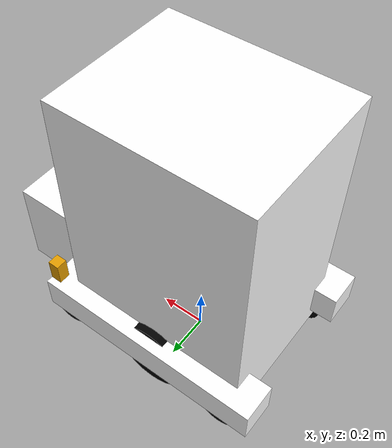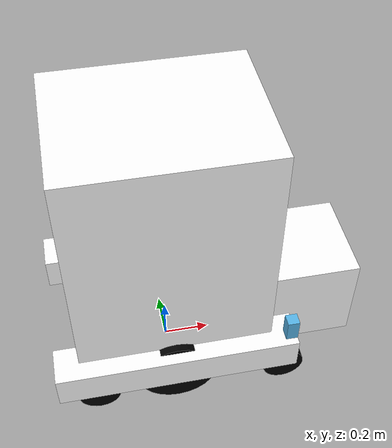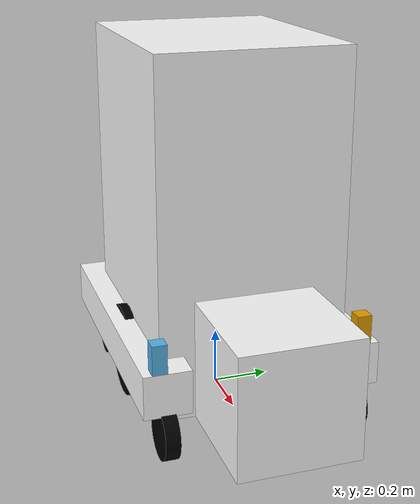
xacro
<?xml version="1.0"?>

<robot xmlns:xacro="http://www.ros.org/wiki/xacro" name="wheelchair">
  <xacro:property name="PI" value="3.14159265359" />

  <xacro:property name="chair_width" value="0.643" /> <!-- From front wheel right joint to front wheel left joint -->
  <xacro:property name="chair_length" value="0.812" /> <!-- From front wheel joint to back wheel joint -->
  <xacro:property name="chair_height" value="1.191" /> <!-- From front wheel joint to head rest -->
  <xacro:property name="chair_weight" value="10.0" />

  <xacro:property name="legs_width" value="0.4064" />
  <xacro:property name="legs_length" value="0.4064" />
  <xacro:property name="legs_height" value="0.4064" />
  <xacro:property name="legs_weight" value="2.0" />

  <xacro:property name="main_wheel_length" value="0.065" />
  <xacro:property name="main_wheel_radius" value=".165" />
  <xacro:property name="main_wheel_weight" value="2.0" />

  <xacro:property name="small_wheel_radius" value=".089" />
  <xacro:property name="small_wheel_length" value=".05" />
  <xacro:property name="small_wheel_weight" value="1.0" />

  <xacro:macro name="box_intertia" params="height length width weight" >
    <inertia ixx="${1/12 * weight * (height + length)}" ixy="0" ixz="0" iyy="${1/12 * weight * (width + length)}" iyz="0" izz="${1/12 * weight * (width + height)}" />
  </xacro:macro>

  <xacro:macro name="cylinder_intertia" params="length radius weight" >
    <inertia ixx="${1/12 * weight * (3 * radius * radius + length * length)}" ixy="0" ixz="0" iyy="${1/12 * weight * (3 * radius*radius + length*length)}" iyz="0" izz="${1/2 * weight * radius*radius}" />
  </xacro:macro>

  <link name="base_footprint">
    <visual>
      <origin xyz="0 0 0" rpy="0 0 0" />
        <geometry>
          <box size="0.001 0.001 0.001" />
      </geometry>
    </visual>
  </link>

  <joint name="base_footprint_joint" type="fixed">
    <origin xyz=" 0 0 0.7" rpy="0 0 0"/>
    <parent link="base_footprint"/>
    <child link="base_link"/>
  </joint>

  <link name="base_link">
    <visual>
      <geometry>
        <box size="${chair_length} ${chair_width} ${chair_height}"/>
      </geometry>
      <material name="white">
        <color rgba="1 1 1 1"/>
      </material>
    </visual>
    <collision>
      <geometry>
        <box size="${chair_length} ${chair_width} ${chair_height}"/>
      </geometry>
    </collision>
    <inertial>
      <mass value="${chair_weight}"/>
      <xacro:box_intertia height="${chair_height}" length="${chair_length}" width="${chair_width}" weight="${chair_weight}" />
    </inertial>
  </link>

  <link name="imu_link">
    <inertial>
      <mass value="0.01"/>
      <origin xyz="0 0 0"/>
      <inertia ixx="1.0E-6" ixy="0" ixz="0" iyy="1.0E-6" iyz="0" izz="1.0E-6"/>
    </inertial>
    <visual>
      <origin rpy="0 0 0" xyz="0 0 0"/>
      <geometry>
        <box size="0.01 0.01 0.01"/>
      </geometry>
    </visual>
  </link>

  <joint name="imu_joint" type="fixed">
    <parent link="base_link"/>
    <child link="imu_link"/>
    <origin xyz="0 0 0" rpy="${PI} 0 0"/>
  </joint>

<!--Legs -->
  <link name="legs">
    <visual>
      <geometry>
        <box size="${legs_length} ${legs_width} ${legs_height}"/>
      </geometry>
      <material name="white">
        <color rgba="1 1 1 1"/>
      </material>
    </visual>
    <collision>
      <geometry>
        <box size="${legs_length} ${legs_width} ${legs_height}"/>
      </geometry>
    </collision>
    <inertial>
      <mass value="${legs_weight}"/>
      <xacro:box_intertia height="${legs_height}" length="${legs_length}" width="${legs_width}" weight="${legs_weight}" />
    </inertial>
  </link>

    <joint name="legs_joint" type="fixed">
    <axis xyz="0 0 0"/>
    <parent link="base_link"/>
    <child link="legs"/>
    <origin rpy="0 0 0" xyz="${chair_length/2 + 0.4064/2} 0 -${chair_height/2 - 0.4064/2}"/> <!--chair_height/4 + chair_height/8 because this is relative to the center of the bar -->
  </joint>

<!--Right Bar -->
  <link name="right_bar">
    <visual>
      <geometry>
        <box size="${chair_length + chair_length/4} ${chair_width/4} ${chair_height/8}"/>
      </geometry>
      <material name="white">
        <color rgba="1 1 1 1"/>
      </material>
    </visual>
    <collision>
      <geometry>
        <box size="${chair_length + chair_length/4} ${chair_width/4} ${chair_height/8}"/>
      </geometry>
    </collision>
    <inertial>
      <mass value="2.0"/>
      <inertia ixx="1e-3" ixy="1e-3" ixz="1e-3" iyy="1e-3" iyz="1e-3" izz="1e-3"/>
    </inertial>
  </link>

  <joint name="right_bar_joint" type="fixed">
    <axis xyz="0 0 0"/>
    <parent link="base_link"/>
    <child link="right_bar"/>
    <origin rpy="0 0 0" xyz="0.0 ${chair_width/2} -${chair_height/4 + chair_height/8}"/> <!--chair_height/4 + chair_height/8 because this is relative to the center of the bar -->
  </joint>

<!--Left Bar -->

  <link name="left_bar">
    <visual>
      <geometry>
        <box size="${chair_length + chair_length/4} ${chair_width/4} ${chair_height/8}"/>
      </geometry>
      <material name="white">
        <color rgba="1 1 1 1"/>
      </material>
    </visual>
    <collision>
      <geometry>
        <box size="${chair_length + chair_length/4} ${chair_width/4} ${chair_height/8}"/>
      </geometry>
    </collision>
    <inertial>
      <mass value="2.0"/>
      <inertia ixx="1e-3" ixy="1e-3" ixz="1e-3" iyy="1e-3" iyz="1e-3" izz="1e-3"/>
    </inertial>
  </link>

  <joint name="left_bar_joint" type="fixed">
    <axis xyz="0 0 0"/>
    <parent link="base_link"/>
    <child link="left_bar"/>
    <origin rpy="0 0 0" xyz="0.0 -${chair_width/2} -${chair_height/4 + chair_height/8}"/> <!--chair_height/4 + chair_height/8 because this is relative to the center of the bar -->
  </joint>

<!--Main Wheels -->

  <joint name="right_main_wheel_joint" type="continuous">
    <axis xyz="0 0 -1"/>
    <parent link="right_bar"/>
    <child link="right_main_wheel"/>
    <origin rpy="1.57075 0 0" xyz="0.0 0.0 -${chair_height/8-0.076}"/>
  </joint>

  <link name="right_main_wheel">
    <visual>
      <geometry>
        <cylinder length="${main_wheel_length}" radius="${main_wheel_radius}"/>
      </geometry>
      <material name="white">
        <color rgba="0 0 0 1"/>
      </material>
    </visual>
    <collision>
      <geometry>
        <cylinder length="${main_wheel_length}" radius="${main_wheel_radius}"/>
      </geometry>
    </collision>
    <inertial>
      <mass value="${main_wheel_weight}"/>
      <xacro:cylinder_intertia length="${main_wheel_length}" radius="${main_wheel_radius}" weight="${main_wheel_weight}" />
    </inertial>
  </link>

  <joint name="left_main_wheel_joint" type="continuous">
    <axis xyz="0 0 -1"/>
    <parent link="left_bar"/>
    <child link="left_main_wheel"/>
    <origin rpy="1.57075 0 0" xyz="0.0 0.0 -${chair_height/8-0.076}"/>
  </joint>

  <link name="left_main_wheel">
    <visual>
      <geometry>
        <cylinder length="${main_wheel_length}" radius="${main_wheel_radius}"/>
      </geometry>
      <material name="white">
        <color rgba="0 0 0 1"/>
      </material>
    </visual>
    <collision>
      <geometry>
        <cylinder length="${main_wheel_length}" radius="${main_wheel_radius}"/>
      </geometry>
    </collision>
    <inertial>
      <mass value="${main_wheel_weight}"/>
      <xacro:cylinder_intertia length="${main_wheel_length}" radius="${main_wheel_radius}" weight="${main_wheel_weight}" />
    </inertial>
  </link>

<!--Laser Scanners -->

  <link name="right_scanner">
    <visual>
      <origin xyz="0.0 0 0" rpy="0 0 0"/>
      <geometry>
        <box size="0.05 0.05 0.1"/>
      </geometry>
    </visual>
    <collision>
      <geometry>
        <box size="0.05 0.05 0.1"/>
      </geometry>
    </collision>
    <inertial>
      <mass value="1e-5" />
      <inertia ixx="1e-3" ixy="0" ixz="0" iyy="1e-3" iyz="0" izz="1e-3" />
    </inertial>
  </link>

  <joint name="right_scanner_joint" type="fixed">
    <axis xyz="0 0 0" />
    <origin xyz="${chair_length/2 - 0.05/2 + chair_length/8} ${0.05/2} ${chair_height/16 + 0.05}" rpy="0 0 1.5707"/>
    <parent link="right_bar"/>
    <child link="right_scanner"/>
  </joint>

  <link name="left_scanner">
    <visual>
      <origin xyz="0.0 0 0" rpy="0 0 0"/>
      <geometry>
        <box size="0.05 0.05 0.1"/>
      </geometry>
    </visual>
    <collision>
      <geometry>
        <box size="0.05 0.05 0.1"/>
      </geometry>
    </collision>
    <inertial>
      <mass value="1e-5" />
      <inertia ixx="1e-3" ixy="0" ixz="0" iyy="1e-3" iyz="0" izz="1e-3" />
    </inertial>
  </link>

  <joint name="left_scanner_joint" type="fixed">
    <axis xyz="0 0 0" />
    <origin xyz="${chair_length/2 - 0.05/2 + chair_length/8} -${0.05/2} ${chair_height/16 + 0.05}" rpy="0 0 -1.5707"/>
    <parent link="left_bar"/>
    <child link="left_scanner"/>
  </joint>

<!--Front Wheels -->
  <link name="front_right_swivel">
    <visual>
      <geometry>
        <cylinder length="0.065" radius="0.01"/>
      </geometry>
      <material name="white">
        <color rgba="0 0 0 1"/>
      </material>
    </visual>
    <collision>
      <geometry>
        <cylinder length="0.065" radius="0.01"/>
      </geometry>
    </collision>
    <inertial>
      <mass value=".1"/>
      <xacro:cylinder_intertia length="0.065" radius="0.01" weight="0.1" />
    </inertial>
  </link>

   <joint name="front_right_swivel_joint" type="continuous">
    <axis xyz="0 0 1"/>
    <parent link="right_bar"/>
    <child link="front_right_swivel"/>
    <origin rpy="0 0 0" xyz="-${chair_length/2} 0.0 -${chair_height/8}"/>
    <dynamics damping="0.0" friction="0.5" />
  </joint>

  <joint name="front_right_wheel_joint" type="continuous">
    <axis xyz="0 0 1"/>
    <parent link="front_right_swivel"/>
    <child link="front_right_wheel"/>
    <origin rpy="1.57075 0 0" xyz="0.065 0 0"/>
    <dynamics damping="0.0" friction="0.5" />
  </joint>

  <link name="front_right_wheel">
    <visual>
      <geometry>
        <cylinder length="${small_wheel_length}" radius="${small_wheel_radius}"/>
      </geometry>
      <material name="white">
        <color rgba="0 0 0 1"/>
      </material>
    </visual>
    <collision>
      <geometry>
        <cylinder length="${small_wheel_length}" radius="${small_wheel_radius}"/>
      </geometry>
      <surface>
        <friction>
          <ode>
            <mu>1.0</mu>
            <mu2>1.0</mu2>
          </ode>
        </friction>
      </surface>
    </collision>
    <inertial>
      <mass value="${small_wheel_weight}"/>
      <xacro:cylinder_intertia length="${small_wheel_length}" radius="${small_wheel_radius}" weight="${small_wheel_weight}" />
    </inertial>
  </link>
  <link name="front_left_swivel">
    <visual>
      <geometry>
        <cylinder length="0.065" radius="0.01"/>
      </geometry>
      <material name="white">
        <color rgba="0 0 0 1"/>
      </material>
    </visual>
    <collision>
      <geometry>
        <cylinder length="0.065" radius="0.01"/>
      </geometry>
    </collision>
    <inertial>
      <mass value=".1"/>
      <xacro:cylinder_intertia length="0.065" radius="0.01" weight="0.1" />
    </inertial>
  </link>

   <joint name="front_left_swivel_joint" type="continuous">
    <axis xyz="0 0 1"/>
    <parent link="left_bar"/>
    <child link="front_left_swivel"/>
    <origin rpy="0 0 0" xyz="-${chair_length/2} 0.0 -${chair_height/8}"/>
    <dynamics damping="0.0" friction="0.5" />
  </joint>

  <joint name="front_left_wheel_joint" type="continuous">
    <axis xyz="0 0 1"/>
    <parent link="front_left_swivel"/>
    <child link="front_left_wheel"/>
    <origin rpy="1.57075 0 0" xyz="0.065 0 0"/>
    <dynamics damping="0" friction="0.5" />
  </joint>

  <link name="front_left_wheel">
    <visual>
      <geometry>
        <cylinder length="0.05" radius="${small_wheel_radius}"/>
      </geometry>
      <material name="white">
        <color rgba="0 0 0 1"/>
      </material>
    </visual>
    <collision>
      <geometry>
        <cylinder length="0.05" radius="${small_wheel_radius}"/>
      </geometry>
      <surface>
        <friction>
          <ode>
            <mu>1.0</mu>
            <mu2>1.0</mu2>
          </ode>
        </friction>
      </surface>
    </collision>
    <inertial>
      <mass value="${small_wheel_weight}"/>
      <xacro:cylinder_intertia length="${small_wheel_length}" radius="${small_wheel_radius}" weight="${small_wheel_weight}" />
    </inertial>
  </link>
<!--Rear Wheels -->

  <link name="rear_right_swivel">
    <visual>
      <geometry>
        <cylinder length="0.065" radius="0.01"/>
      </geometry>
      <material name="white">
        <color rgba="0 0 0 1"/>
      </material>
    </visual>
    <collision>
      <geometry>
        <cylinder length="0.065" radius="0.01"/>
      </geometry>
    </collision>
    <inertial>
      <mass value=".1"/>
      <xacro:cylinder_intertia length="0.065" radius="0.01" weight="0.1" />
    </inertial>
  </link>

   <joint name="rear_right_swivel_joint" type="continuous">
    <axis xyz="0 0 1"/>
    <parent link="right_bar"/>
    <child link="rear_right_swivel"/>
    <origin rpy="0 0 0" xyz="${chair_length/2} 0.0 -${chair_height/8}"/>
    <dynamics damping="0.0" friction="0.5" />
  </joint>

  <joint name="rear_right_wheel_joint" type="continuous">
    <axis xyz="0 0 1"/>
    <parent link="rear_right_swivel"/>
    <child link="rear_right_wheel"/>
    <origin rpy="1.57075 0 0" xyz="0.065 0 0"/>
    <dynamics damping="0" friction="0.5" />
  </joint>

  <link name="rear_right_wheel">
    <visual>
      <geometry>
        <cylinder length="0.05" radius="${small_wheel_radius}"/>
      </geometry>
      <material name="white">
        <color rgba="0 0 0 1"/>
      </material>
    </visual>
    <collision>
      <geometry>
        <cylinder length="0.05" radius="${small_wheel_radius}"/>
      </geometry>
      <surface>
        <friction>
          <ode>
            <mu>1.0</mu>
            <mu2>1.0</mu2>
          </ode>
        </friction>
      </surface>
    </collision>
    <inertial>
      <mass value="${small_wheel_weight}"/>
      <xacro:cylinder_intertia length="${small_wheel_length}" radius="${small_wheel_radius}" weight="${small_wheel_weight}" />
    </inertial>
  </link>

  <link name="rear_left_swivel">
    <visual>
      <geometry>
        <cylinder length="0.065" radius="0.01"/>
      </geometry>
      <material name="white">
        <color rgba="0 0 0 1"/>
      </material>
    </visual>
    <collision>
      <geometry>
        <cylinder length="0.065" radius="0.01"/>
      </geometry>
    </collision>
    <inertial>
      <mass value=".1"/>
      <xacro:cylinder_intertia length="0.065" radius="0.01" weight="0.1" />
    </inertial>
  </link>

   <joint name="rear_left_swivel_joint" type="continuous">
    <axis xyz="0 0 1"/>
    <parent link="left_bar"/>
    <child link="rear_left_swivel"/>
    <origin rpy="0 0 0" xyz="${chair_length/2} 0.0 -${chair_height/8}"/>
    <dynamics damping="0.0" friction="0.5" />
  </joint>

  <joint name="rear_left_wheel_joint" type="continuous">
    <axis xyz="0 0 1"/>
    <parent link="rear_left_swivel"/>
    <child link="rear_left_wheel"/>
    <origin rpy="1.57075 0 0" xyz="0.065 0 0"/>
    <dynamics damping="0" friction="0.5" />
  </joint>

  <link name="rear_left_wheel">
    <visual>
      <geometry>
        <cylinder length="0.05" radius="${small_wheel_radius}"/>
      </geometry>
      <material name="white">
        <color rgba="0 0 0 1"/>
      </material>
    </visual>
    <collision>
      <geometry>
        <cylinder length="0.05" radius="${small_wheel_radius}"/>
      </geometry>
      <surface>
        <friction>
          <ode>
            <mu>1.0</mu>
            <mu2>1.0</mu2>
          </ode>
        </friction>
      </surface>
    </collision>
    <inertial>
      <mass value="${small_wheel_weight}"/>
      <xacro:cylinder_intertia length="${small_wheel_length}" radius="${small_wheel_radius}" weight="${small_wheel_weight}" />
    </inertial>
  </link>
</robot>
